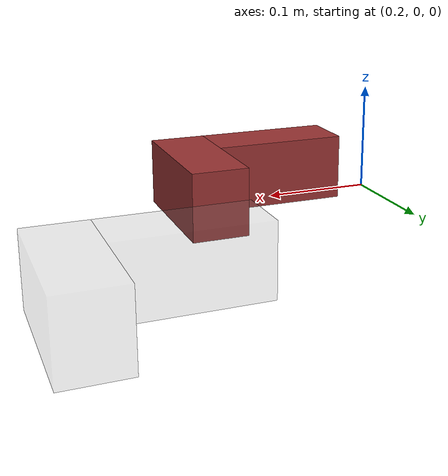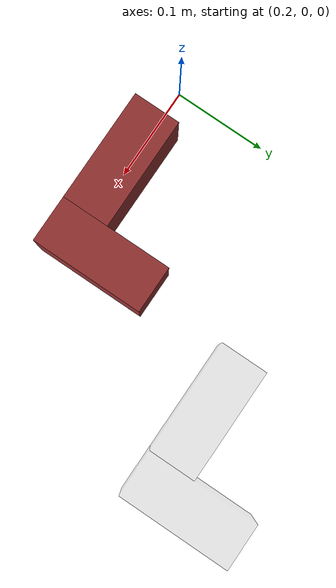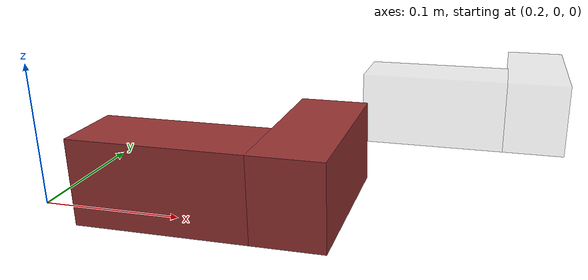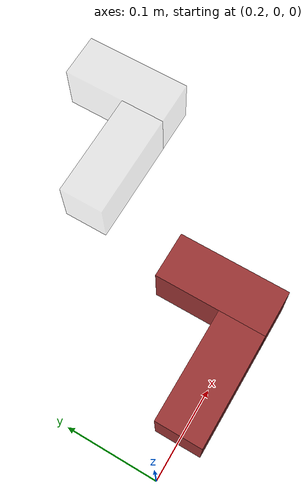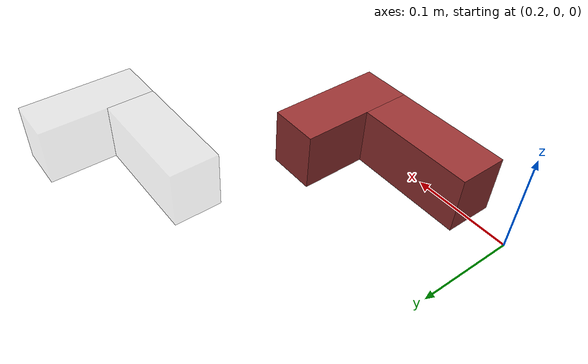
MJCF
<mujoco model="l_block">
  <default>
    <default class="l_block">
      <geom type="box" condim="1" rgba=".6 .2 .2 1" density="1240" solref="0.004 1"/>
      <default class="box1">
        <geom size="0.06 0.025 0.03"/>
      </default>
      <default class="box2">
        <geom size="0.06 0.025 0.03"/>
      </default>
      <site type="sphere" size=".005" rgba="0 1 0 1" group="5"/>
    </default>
  </default>

  <worldbody>
    <body name="object" pos="0.3 0 .03">
      <freejoint name="object_joint"/>
      <geom name="object_box_1" class="box1"/>
      <geom name="object_box_2" class="box2" pos="0.085 0.035 0" quat="1 0 0 1"/>
    </body>
    <body name="object_target" pos="0.45 0.2 .03" mocap="true">
      <geom class="box1" rgba=".5 .5 .5 .2" contype="0" conaffinity="0"/>
      <geom class="box2" pos="0.085 0.035 0" quat="1 0 0 1" rgba=".5 .5 .5 .2" contype="0" conaffinity="0"/>
    </body>
  </worldbody>
</mujoco>
